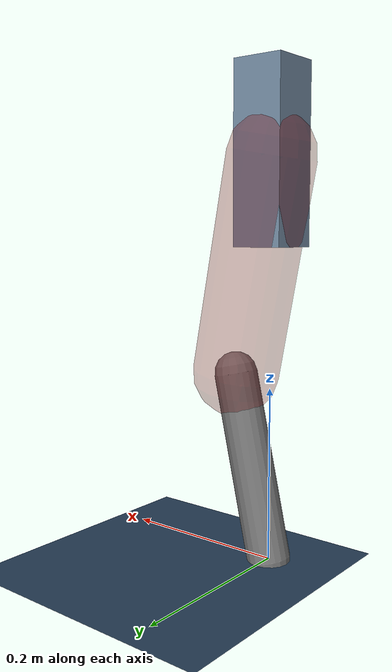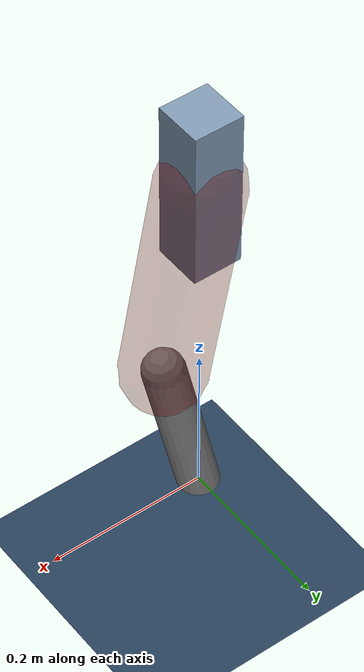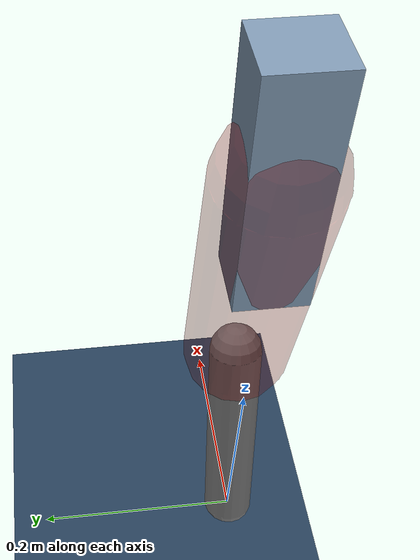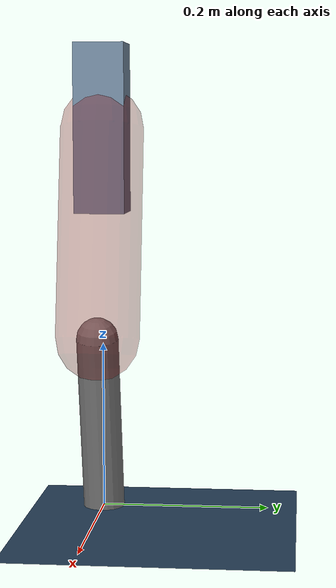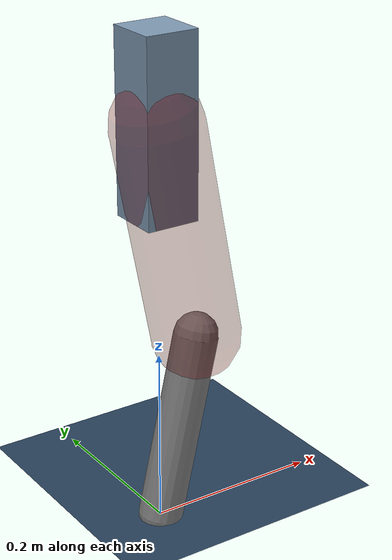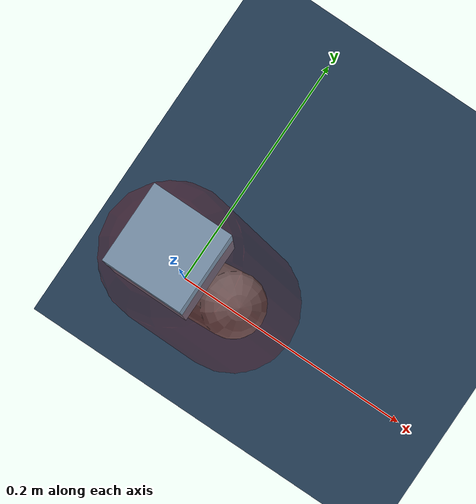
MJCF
<mujoco model="Hopper2D">
	<compiler inertiafromgeom="true" angle="radian" />
	<option timestep="0.001" integrator="implicit" cone="elliptic" solver="Newton" tolerance="1e-10" />

	<default>
		<geom contype="1" conaffinity="1" condim="3" friction="2 0.005 0.0001" solref="0.005 1" />
		<joint limited="true" damping="0.1" />
	</default>

	<asset>
		<texture name="skybox" type="skybox" builtin="gradient" rgb1=".4 .6 .8" rgb2="0 0 0" width="800" height="800" />
		<texture name="grid" type="2d" builtin="checker" rgb1=".1 .2 .3" rgb2=".2 .3 .4" width="300" height="300" mark="edge" markrgb=".2 .3 .4" />
		<material name="ground" texture="grid" texrepeat="1 1" texuniform="true" reflectance="0.1" />
		<material name="leg" rgba="0.5 0.6 0.7 1" />
	</asset>

	<worldbody>

		<geom name="floor" type="plane" size="5 5 0.25" material="ground" />

		<light directional="false" diffuse="0.8 0.8 0.8" specular="0.3 0.3 0.3" pos="0 0 2" dir="0 0 -1" />
		<light mode="targetbodycom" target="base" directional="false" diffuse="0.8 0.8 0.8" specular="0.3 0.3 0.3" pos="0 0 2" dir="0 0 -1" />

		<camera name="fixed" pos="0 -2 1" xyaxes="1 0 0 0 0 1" />
		<camera name="tracking" mode="trackcom" pos="0 -3 1" />

		<body name="root" pos="0 0 0.4587848787620049">
			<joint name="slide_x" type="slide" axis="1 0 0" range="-100 100" />
			<joint name="slide_z" type="slide" axis="0 0 1" range="0 10" />

			<body name="base" pos="0 0 0">
				<geom name="torso" type="box" size="0.03 0.03 0.1" mass="1.326" material="leg" />

				<body name="link1" pos="0 0 0" euler="0 1.3777769663358583 0">
					<joint type="hinge" axis="0 -1 0" pos="0 0 0" name="hinge1" limited="true" range="-3.14 3.14" stiffness="0" damping="0.1" />
					<geom name="thigh" type="capsule" fromto="0 0 0 0.2504257970541952 0 0" size="0.05" rgba="0.5 0 0 0.3" mass="0.8575070723409076" />

					<body name="link2" pos="0.2504257970541952 0 0" euler="0 0.4148265228563945 0">
						<joint type="hinge" axis="0 -1 0" pos="0 0 0" name="hinge2" limited="true" range="-3.14 3.14" stiffness="0" damping="0.1" />
						<geom name="shank" type="capsule" fromto="0 0 0 0.2183590817078097 0 0" size="0.025" mass="0.41628726536624777" />

					</body>
				</body>
			</body>
		</body>
	</worldbody>

	<actuator>
		<motor name="torque1" joint="hinge1" ctrlrange="-26.659435869249762 26.659435869249762" ctrllimited="true" gear="1" />
		<motor name="torque2" joint="hinge2" ctrlrange="-12.835524164191321 12.835524164191321" ctrllimited="true" gear="1" />
	</actuator>
</mujoco>
